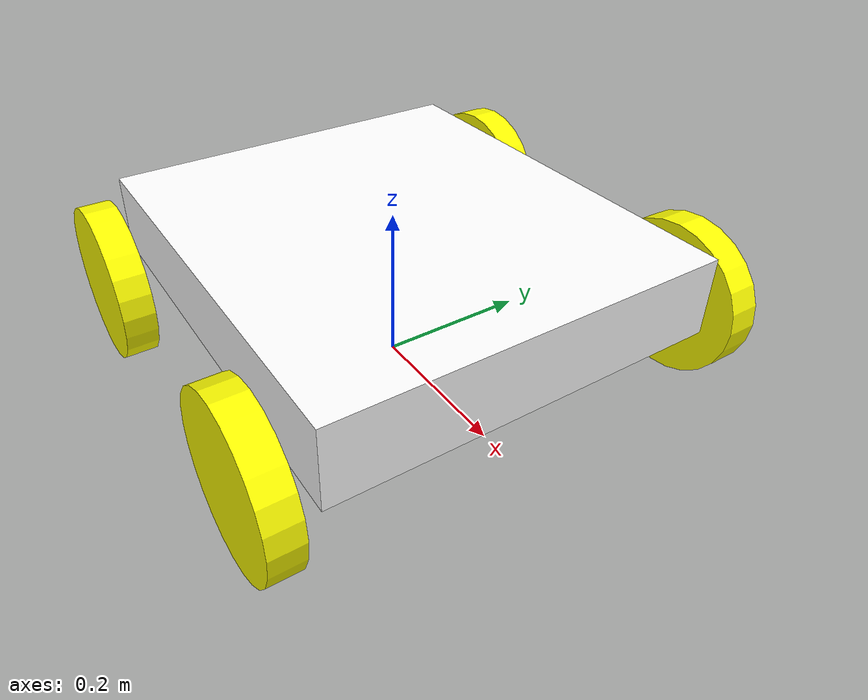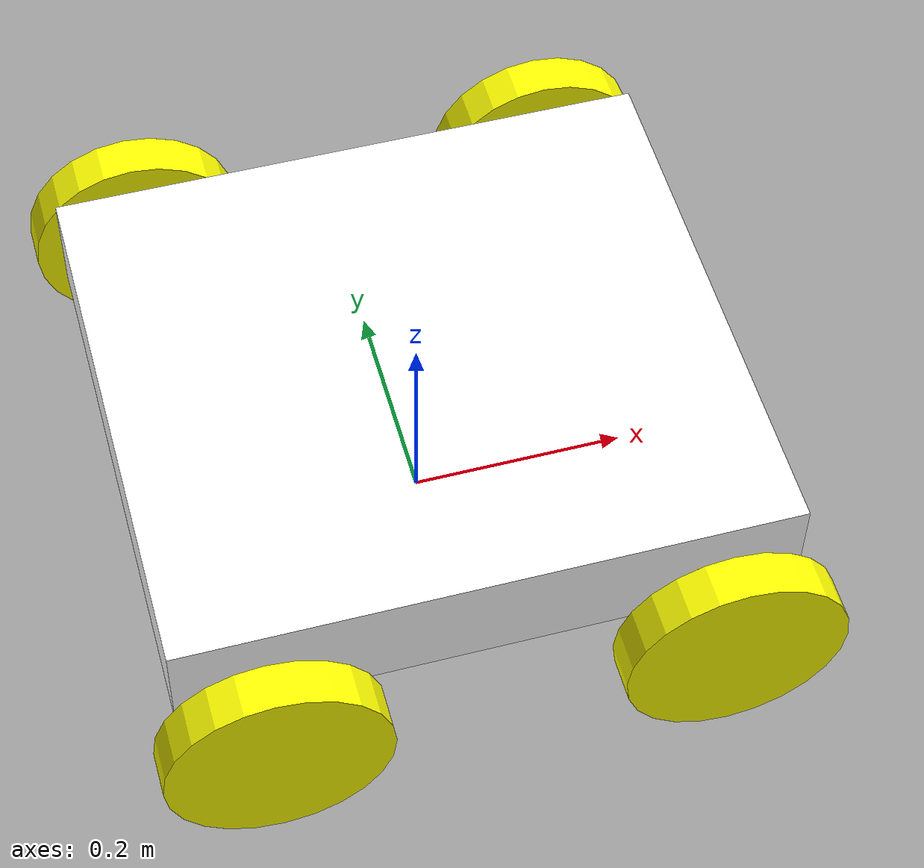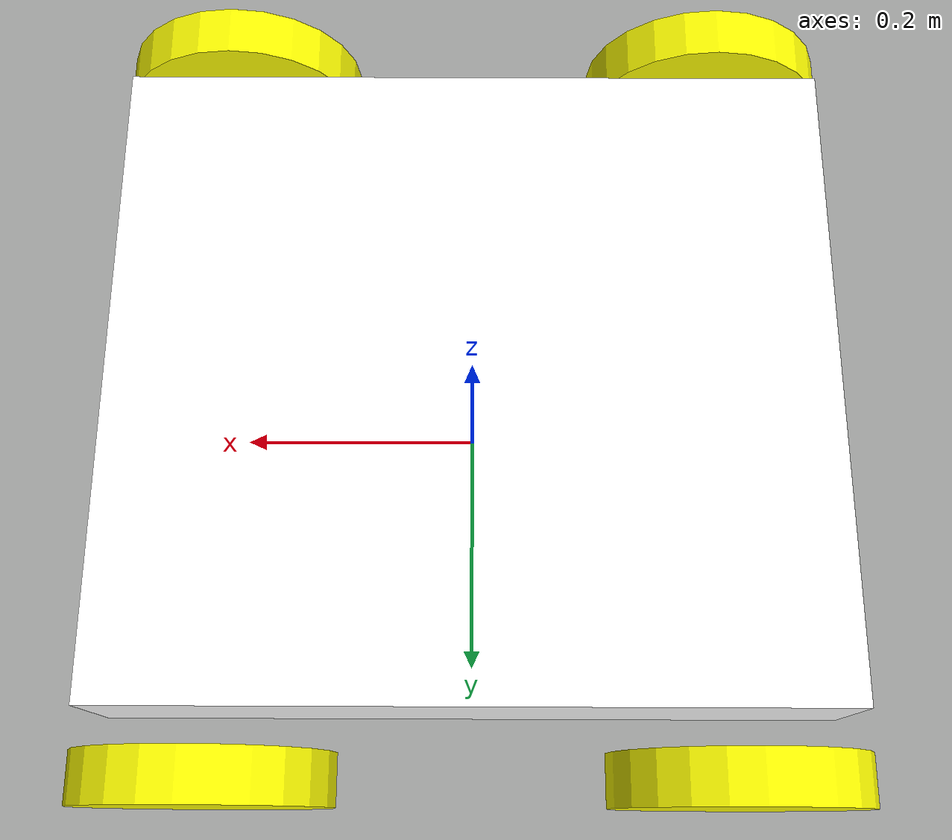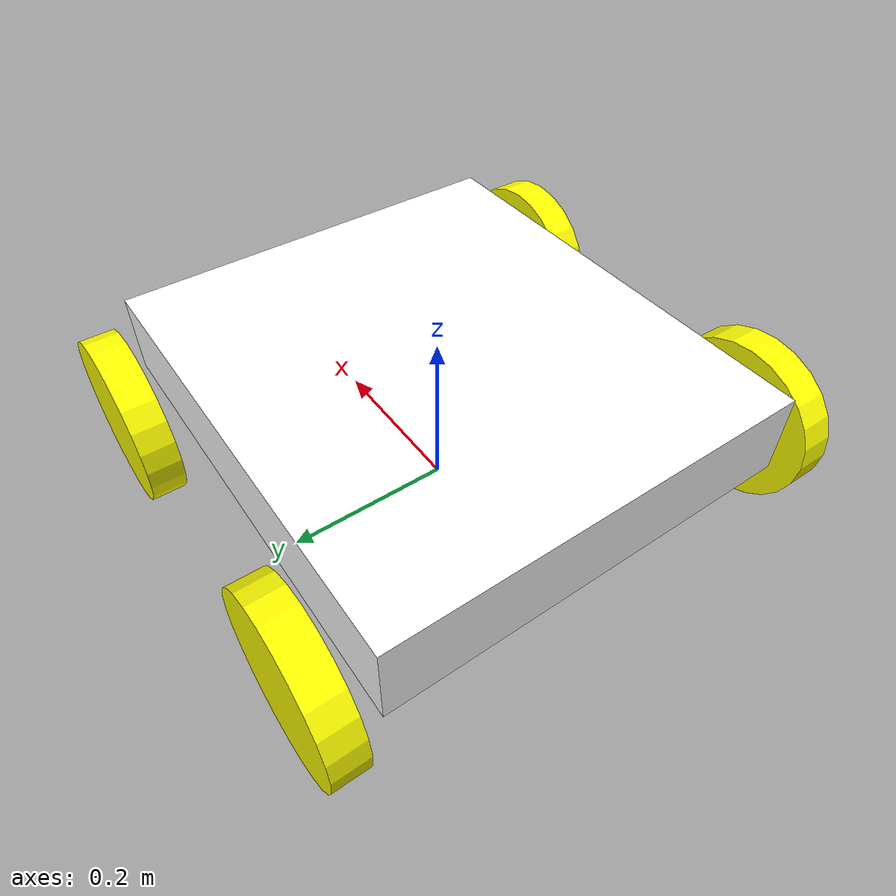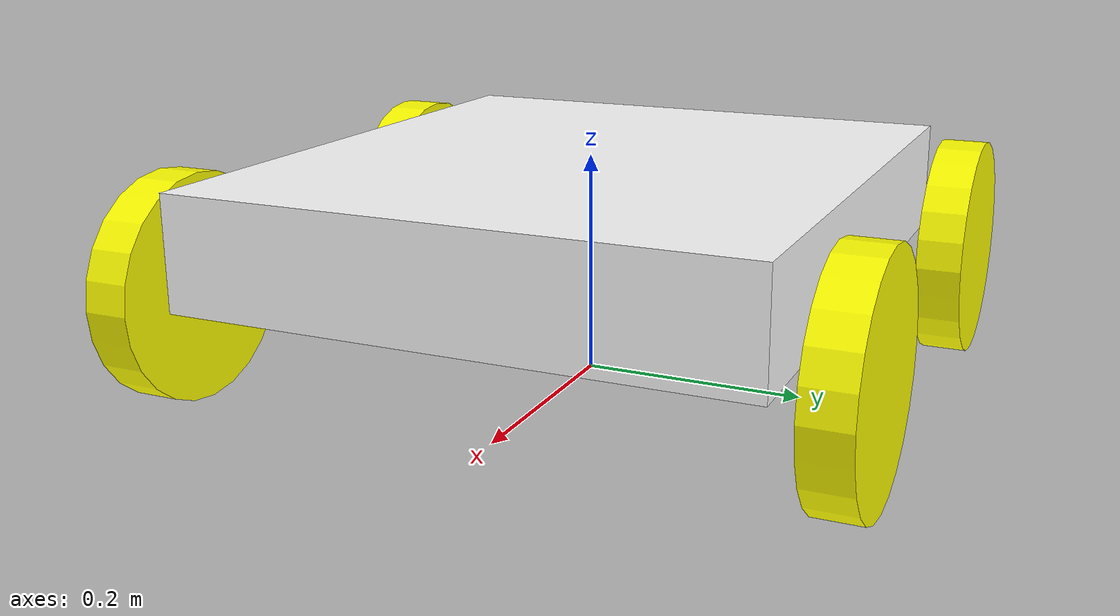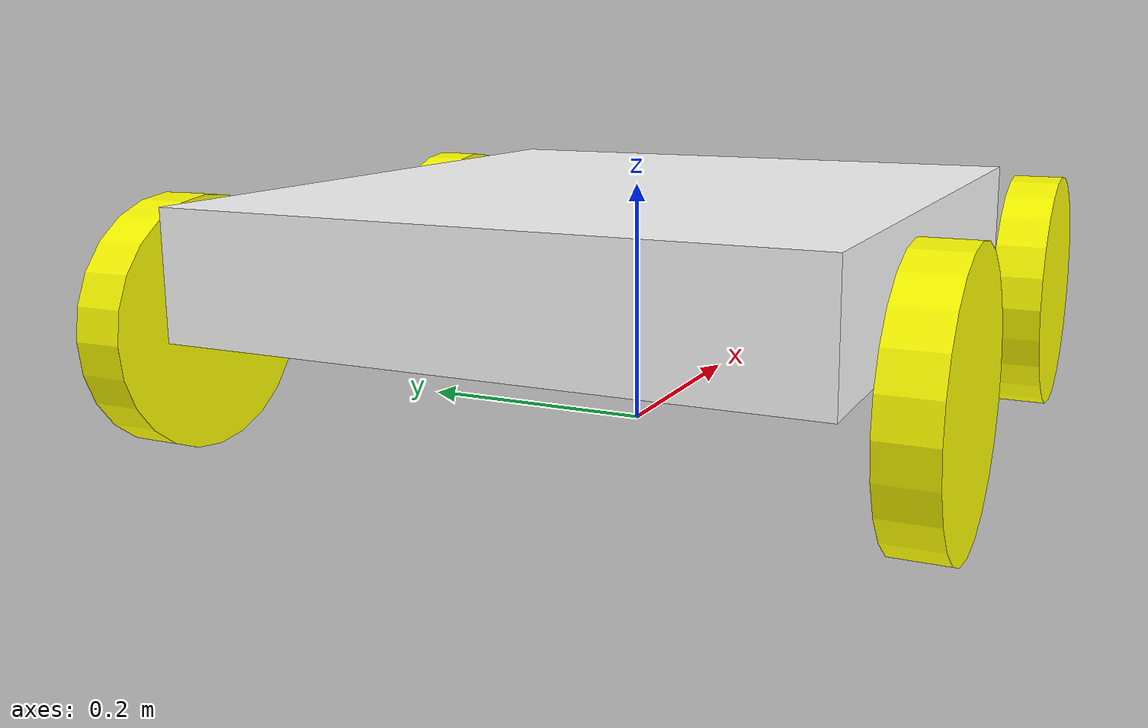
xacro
<?xml version="1.0"?>
<robot xmlns:xacro="http://www.ros.org/wiki/xacro">

    <xacro:include filename="inertial_macros.xacro"/>

    <material name="white">
        <color rgba="1 1 1 1" />
    </material>

    <material name="orange">
        <color rgba="1 0.3 0.1 1"/>
    </material>

    <material name="blue">
        <color rgba="0.2 0.2 1 1"/>
    </material>

    <material name="black">
        <color rgba="0 0 0 1"/>
    </material>

    <material name="red">
        <color rgba="1 0 0 1"/>
    </material>

    <!-- BASE LINK -->

    <link name="base_link">
    </link>

    <!-- BASE FOOTRPRINT LINK-->

    <joint name="base_footprint_joint" type="fixed">
        <parent link="base_link"/>
        <child link="base_footprint"/>
        <origin xyz="0.0 0.0 0.0"/>
    </joint>

    <link name="base_footprint">
    </link>

    <!-- Chassis Link -->
    <link name="chassis">
        <visual>
            <origin xyz=" 0 0 0.15" rpy="0 0 0" />
            <geometry>
                <box size="0.554 0.500 0.1"/>
            </geometry>
            <material name="white"/>
        </visual>
        <collision>
            <origin xyz=" 0 0 0.15"/>
            <geometry>
                <box size="0.554 0.500 0.1"/>
            </geometry>
        </collision>
        <xacro:inertial_box mass="10" x="0.554" y="0.500" z="0.1">
                <origin xyz=" 0 0 0.15" rpy="0.0 0.0 0.0"/>
        </xacro:inertial_box>
    </link>

    <joint name="chassis_joint" type="fixed">
        <parent link="base_link"/>
        <child link="chassis"/>
        <origin xyz="0.0 0.0 0.0"/>
    </joint>

    <!-- All Wheel Links and Joints -->

    <xacro:macro name="wheel" params="name x y z">
        <joint name="${name}_wheel_joint" type="continuous">
            <origin xyz="${x} ${y} ${z}" rpy="-${pi/2} 0.0 0.0"/>
            <parent link="chassis"/>
            <child link="${name}_wheel"/>
            <limit effort="1000.0" velocity="5.0"/>
            <axis xyz="0 0 1"/>
        </joint>

        <link name="${name}_wheel">
            <visual name="">
                <origin xyz="0.0 0.0 0.0" rpy="0.0 0.0 0.0"/>
                <geometry>
                    <cylinder radius="0.1" length="0.04"/>
                </geometry>
                <material name="orange">
                    <color rgba="1.0 1.0 0.0 1.0"/>
                </material>
            </visual>
            <collision>
                <origin xyz="0.0 0.0 0.0" rpy="0.0 0.0 0.0"/>
                <geometry>
                    <cylinder radius="0.1" length="0.04"/>
                </geometry>
            </collision>
            <xacro:inertial_cylinder mass="1" length="0.04" radius="0.1">
                <origin xyz="0.0 0.0 0.0" rpy="0.0 0.0 0.0"/>
            </xacro:inertial_cylinder>
        </link>
    </xacro:macro>

    <!-- Wheel Creating using macros -->
    <xacro:wheel name="front_left"  x="0.201" y ="0.295" z="0.1"/>
    <xacro:wheel name="rear_left" x="-0.201" y ="0.295" z="0.1"/>
    <xacro:wheel name="front_right"  x="0.201" y ="-0.295" z="0.1"/>
    <xacro:wheel name="rear_right"   x="-0.201" y ="-0.295" z="0.1"/>

</robot>
